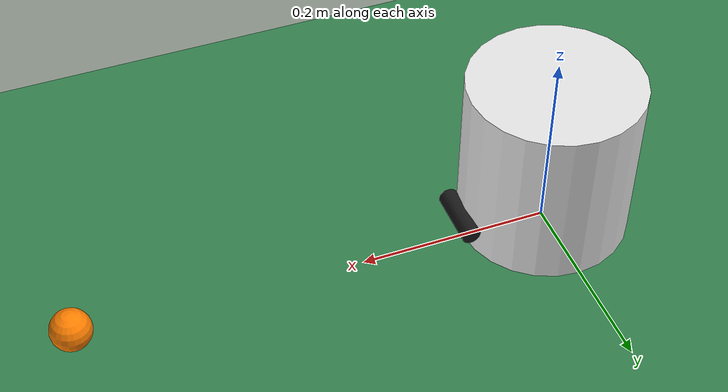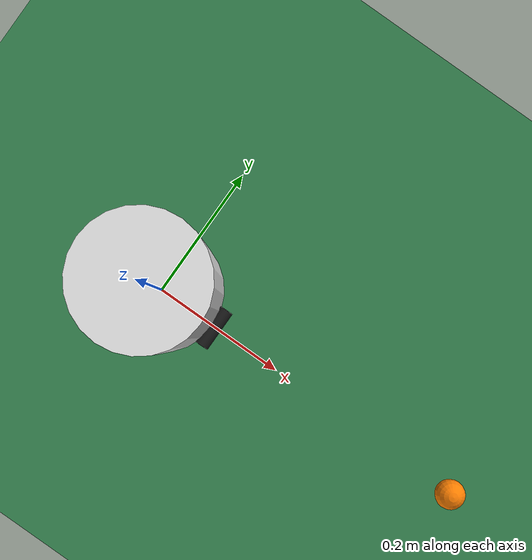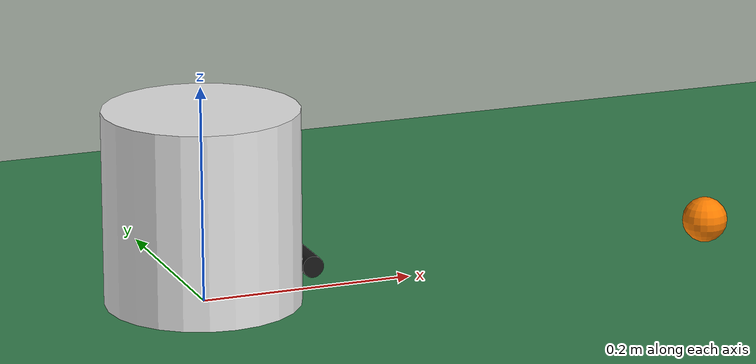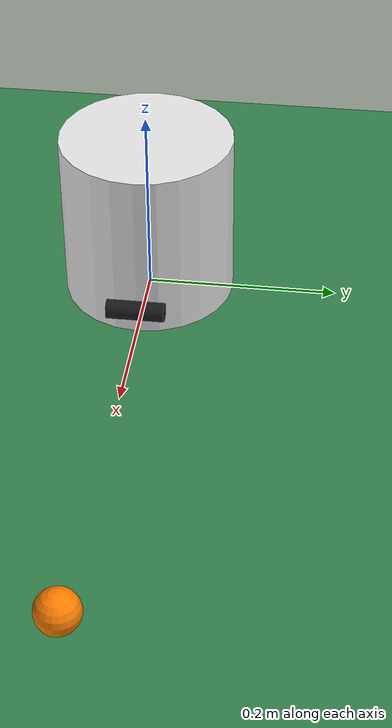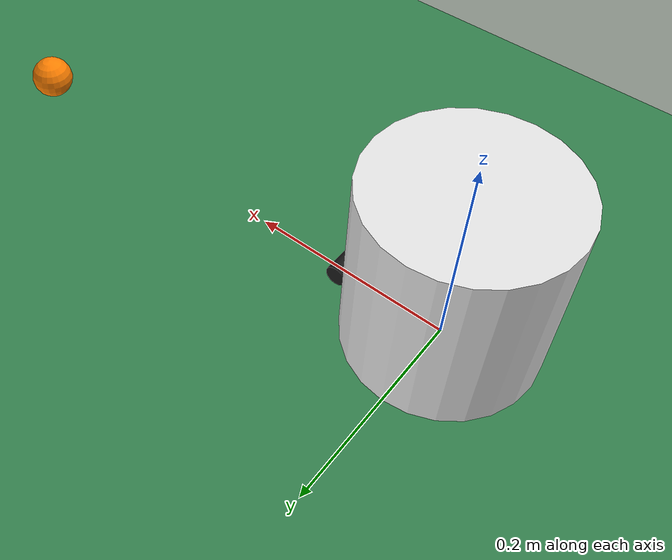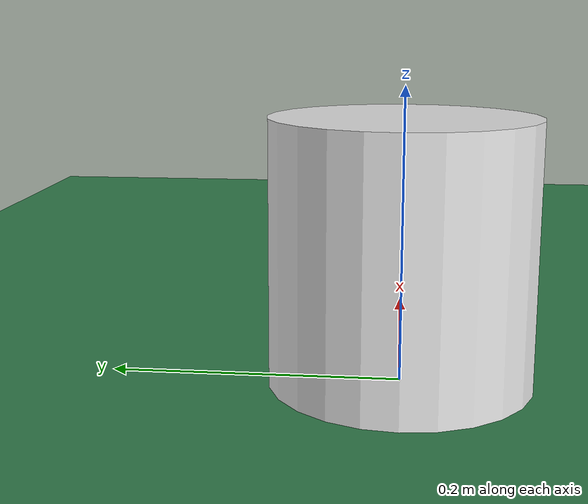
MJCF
<mujoco model="ssl_robot_v0">
  <compiler angle="radian"/>
  <option timestep="0.002" integrator="implicitfast"/>

  <!-- condim=6 on everything so spin/rolling friction is modeled (needed for backspin) -->
  <default>
    <geom condim="6" friction="1 0.005 0.0001"/>
  </default>

  <worldbody>
    <light pos="0 0 2" dir="0 0 -1"/>
    <geom name="floor" friction="0.5 0.005 0.0001" type="plane" size="3 2 0.1" rgba="0.2 0.5 0.3 1"/>

    <body name="robot" pos="0 0 0.09">
      <joint name="x" type="slide" axis="1 0 0"/>
      <joint name="y" type="slide" axis="0 1 0"/>
      <joint name="yaw" type="hinge" axis="0 0 1"/>
      <!-- cylinder size = radius, HALF-height -->
      <geom name="chassis" type="cylinder" size="0.09 0.09" mass="2.4" rgba="0.9 0.9 0.9 1"/>
      <!-- Dribbler bar at the front, axis along robot y, protruding ~1.5 cm past the chassis -->
      <body name="dribbler" pos="0.095 0 -0.06">
        <joint name="dribbler_spin" type="hinge" axis="0 1 0" armature="1e-4"/>
        <geom name="dribbler_bar" type="cylinder" fromto="0 -0.03 0 0 0.03 0" size="0.01"
              mass="0.05" rgba="0.1 0.1 0.1 1"/>
      </body>
    </body>

    <!-- Golf ball: 42.7 mm diameter, 46 g -->
    <body name="ball" pos="0.5 0 0.02135">
      <freejoint name="ball_free"/>
      <geom name="ball" friction="0.5 0.005 0.0001" type="sphere" size="0.02135" mass="0.046" rgba="1 0.5 0 1"/>
    </body>
  </worldbody>

  <!-- Velocity actuators: ctrl is a target velocity (m/s, rad/s). x/y are WORLD-frame. -->
  <actuator>
    <velocity name="vx" joint="x" kv="100" ctrlrange="-3 3"/>
    <velocity name="vy" joint="y" kv="100" ctrlrange="-3 3"/>
    <velocity name="wz" joint="yaw" kv="2" ctrlrange="-10 10"/>
    <velocity name="dribbler" joint="dribbler_spin" kv="0.002" ctrlrange="-1500 1500"/>
  </actuator>
</mujoco>
